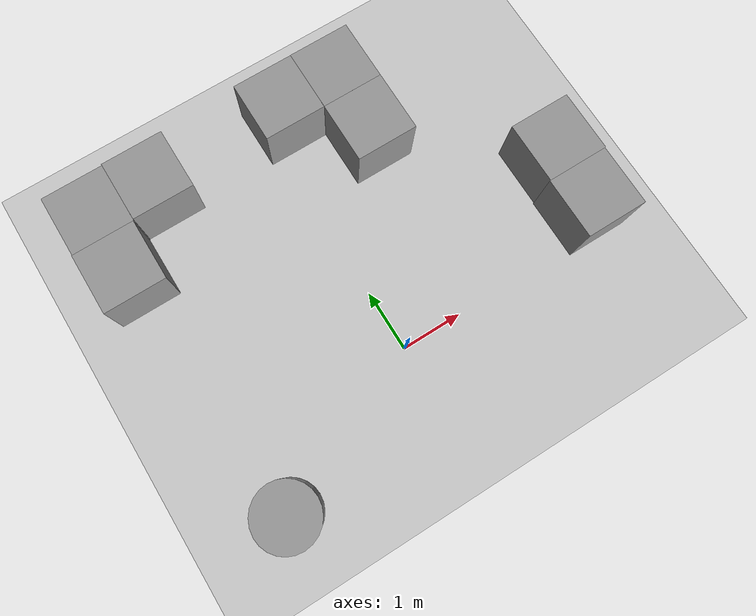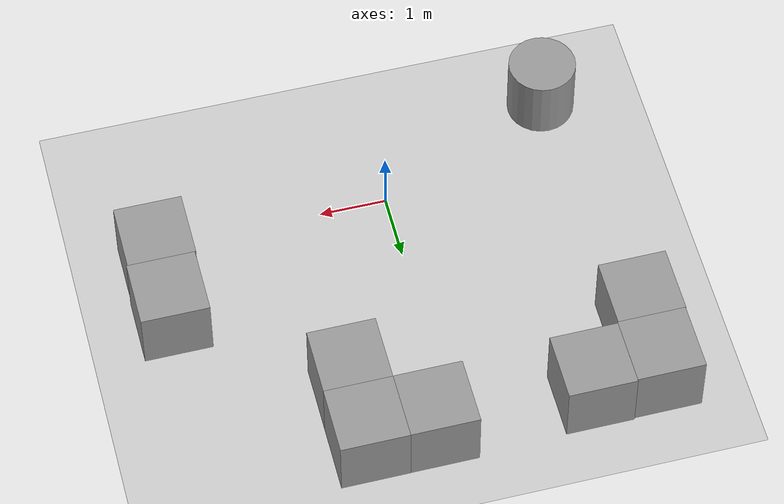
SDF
<sdf version="1.7">
 <world name="default">
  <light name="sun" type="directional">
   <pose>0 0 10 0 -0 0</pose>
   <diffuse>0.8 0.8 0.8 1</diffuse>
   <specular>0.2 0.2 0.2 1</specular>
   <attenuation>
    <range>1000</range>
    <constant>0.9</constant>
    <linear>0.01</linear>
    <quadratic>0.001</quadratic>
   </attenuation>
   <direction>-0.5 0.1 -0.9</direction>
   <spot><inner_angle>0</inner_angle><outer_angle>0</outer_angle><falloff>0</falloff></spot>
  </light>
  <model name="ground_plane">
   <static>1</static>
   <link name="link">
    <collision name="collision">
     <geometry><plane><normal>0 0 1</normal><size>100 100</size></plane></geometry>
     <surface>
      <contact><collide_bitmask>65535</collide_bitmask></contact>
      <friction><ode><mu>100</mu><mu2>50</mu2></ode></friction>
     </surface>
    </collision>
    <visual name="visual">
     <cast_shadows>0</cast_shadows>
     <geometry><plane><normal>0 0 1</normal><size>100 100</size></plane></geometry>
     <material>
      <script><uri>file://media/materials/scripts/gazebo.material</uri><name>Gazebo/Grey</name></script>
     </material>
    </visual>
   </link>
  </model>
  <gravity>0 0 -9.8</gravity>
  <magnetic_field>6e-06 2.3e-05 -4.2e-05</magnetic_field>
  <atmosphere type="adiabatic"/>
  <physics type="ode">
   <max_step_size>0.001</max_step_size>
   <real_time_factor>1</real_time_factor>
   <real_time_update_rate>1000</real_time_update_rate>
  </physics>
  <scene><ambient>0.4 0.4 0.4 1</ambient><background>0.7 0.7 0.7 1</background><shadows>1</shadows></scene>
  <audio><device>default</device></audio>
  <spherical_coordinates>
   <surface_model>EARTH_WGS84</surface_model>
   <latitude_deg>0</latitude_deg>
   <longitude_deg>0</longitude_deg>
   <elevation>0</elevation>
   <heading_deg>0</heading_deg>
  </spherical_coordinates>
  <model name="unit_box">
   <pose>-1.97217 4.06542 0.5 0 -0 0.001036</pose>
   <link name="link">
    <inertial>
     <mass>1</mass>
     <inertia>
      <ixx>0.166667</ixx>
      <ixy>0</ixy>
      <ixz>0</ixz>
      <iyy>0.166667</iyy>
      <iyz>0</iyz>
      <izz>0.166667</izz>
     </inertia>
    </inertial>
    <collision name="collision"><geometry><box><size>1 1 1</size></box></geometry></collision>
    <visual name="visual">
     <geometry><box><size>1 1 1</size></box></geometry>
     <material>
      <script><name>Gazebo/Grey</name><uri>file://media/materials/scripts/gazebo.material</uri></script>
     </material>
    </visual>
   </link>
  </model>
  <model name="unit_box_0">
   <pose>0.312278 4.1314 0.5 0 0 -0.00011</pose>
   <link name="link">
    <inertial>
     <mass>1</mass>
     <inertia>
      <ixx>0.166667</ixx>
      <ixy>0</ixy>
      <ixz>0</ixz>
      <iyy>0.166667</iyy>
      <iyz>0</iyz>
      <izz>0.166667</izz>
     </inertia>
    </inertial>
    <collision name="collision"><geometry><box><size>1 1 1</size></box></geometry></collision>
    <visual name="visual">
     <geometry><box><size>1 1 1</size></box></geometry>
     <material>
      <script><name>Gazebo/Grey</name><uri>file://media/materials/scripts/gazebo.material</uri></script>
     </material>
    </visual>
   </link>
  </model>
  <model name="unit_box_1">
   <pose>-2.98008 3.04279 0.5 0 -0 0.00103</pose>
   <link name="link">
    <inertial>
     <mass>1</mass>
     <inertia>
      <ixx>0.166667</ixx>
      <ixy>0</ixy>
      <ixz>0</ixz>
      <iyy>0.166667</iyy>
      <iyz>0</iyz>
      <izz>0.166667</izz>
     </inertia>
    </inertial>
    <collision name="collision"><geometry><box><size>1 1 1</size></box></geometry></collision>
    <visual name="visual">
     <geometry><box><size>1 1 1</size></box></geometry>
     <material>
      <script><name>Gazebo/Grey</name><uri>file://media/materials/scripts/gazebo.material</uri></script>
     </material>
    </visual>
   </link>
  </model>
  <model name="unit_box_2">
   <pose>-2.97219 4.04281 0.5 0 -0 0.001038</pose>
   <link name="link">
    <inertial>
     <mass>1</mass>
     <inertia>
      <ixx>0.166667</ixx>
      <ixy>0</ixy>
      <ixz>0</ixz>
      <iyy>0.166667</iyy>
      <iyz>0</iyz>
      <izz>0.166667</izz>
     </inertia>
    </inertial>
    <collision name="collision"><geometry><box><size>1 1 1</size></box></geometry></collision>
    <visual name="visual">
     <geometry><box><size>1 1 1</size></box></geometry>
     <material>
      <script><name>Gazebo/Grey</name><uri>file://media/materials/scripts/gazebo.material</uri></script>
     </material>
    </visual>
   </link>
  </model>
  <model name="unit_box_3">
   <pose>1.31233 4.13372 0.5 -0 -0 -9e-06</pose>
   <link name="link">
    <inertial>
     <mass>1</mass>
     <inertia>
      <ixx>0.166667</ixx>
      <ixy>0</ixy>
      <ixz>0</ixz>
      <iyy>0.166667</iyy>
      <iyz>0</iyz>
      <izz>0.166667</izz>
     </inertia>
    </inertial>
    <collision name="collision"><geometry><box><size>1 1 1</size></box></geometry></collision>
    <visual name="visual">
     <geometry><box><size>1 1 1</size></box></geometry>
     <material>
      <script><name>Gazebo/Grey</name><uri>file://media/materials/scripts/gazebo.material</uri></script>
     </material>
    </visual>
   </link>
  </model>
  <model name="unit_box_4">
   <pose>1.31224 3.13371 0.5 -0 -0 -6e-06</pose>
   <link name="link">
    <inertial>
     <mass>1</mass>
     <inertia>
      <ixx>0.166667</ixx>
      <ixy>0</ixy>
      <ixz>0</ixz>
      <iyy>0.166667</iyy>
      <iyz>0</iyz>
      <izz>0.166667</izz>
     </inertia>
    </inertial>
    <collision name="collision"><geometry><box><size>1 1 1</size></box></geometry></collision>
    <visual name="visual">
     <geometry><box><size>1 1 1</size></box></geometry>
     <material>
      <script><name>Gazebo/Grey</name><uri>file://media/materials/scripts/gazebo.material</uri></script>
     </material>
    </visual>
   </link>
  </model>
  <model name="unit_box_5">
   <pose>3.5273 1.37855 0.5 0 -0 -4e-05</pose>
   <link name="link">
    <inertial>
     <mass>1</mass>
     <inertia>
      <ixx>0.166667</ixx>
      <ixy>0</ixy>
      <ixz>0</ixz>
      <iyy>0.166667</iyy>
      <iyz>0</iyz>
      <izz>0.166667</izz>
     </inertia>
    </inertial>
    <collision name="collision"><geometry><box><size>1 1 1</size></box></geometry></collision>
    <visual name="visual">
     <geometry><box><size>1 1 1</size></box></geometry>
     <material>
      <script><name>Gazebo/Grey</name><uri>file://media/materials/scripts/gazebo.material</uri></script>
     </material>
    </visual>
   </link>
  </model>
  <model name="unit_box_6">
   <pose>3.5114 0.378539 0.5 0 -0 -3.9e-05</pose>
   <link name="link">
    <inertial>
     <mass>1</mass>
     <inertia>
      <ixx>0.166667</ixx>
      <ixy>0</ixy>
      <ixz>0</ixz>
      <iyy>0.166667</iyy>
      <iyz>0</iyz>
      <izz>0.166667</izz>
     </inertia>
    </inertial>
    <collision name="collision"><geometry><box><size>1 1 1</size></box></geometry></collision>
    <visual name="visual">
     <geometry><box><size>1 1 1</size></box></geometry>
     <material>
      <script><name>Gazebo/Grey</name><uri>file://media/materials/scripts/gazebo.material</uri></script>
     </material>
    </visual>
   </link>
  </model>
  <model name="unit_cylinder">
   <pose>-2.69493 -1.15174 0.499993 -3e-06 -4e-06 -0</pose>
   <link name="link">
    <inertial>
     <mass>1</mass>
     <inertia><ixx>0.145833</ixx><ixy>0</ixy><ixz>0</ixz><iyy>0.145833</iyy><iyz>0</iyz><izz>0.125</izz></inertia>
    </inertial>
    <collision name="collision">
     <geometry><cylinder><radius>0.5</radius><length>1</length></cylinder></geometry>
    </collision>
    <visual name="visual">
     <geometry><cylinder><radius>0.5</radius><length>1</length></cylinder></geometry>
     <material>
      <script><name>Gazebo/Grey</name><uri>file://media/materials/scripts/gazebo.material</uri></script>
     </material>
    </visual>
   </link>
  </model>
 </world>
</sdf>
